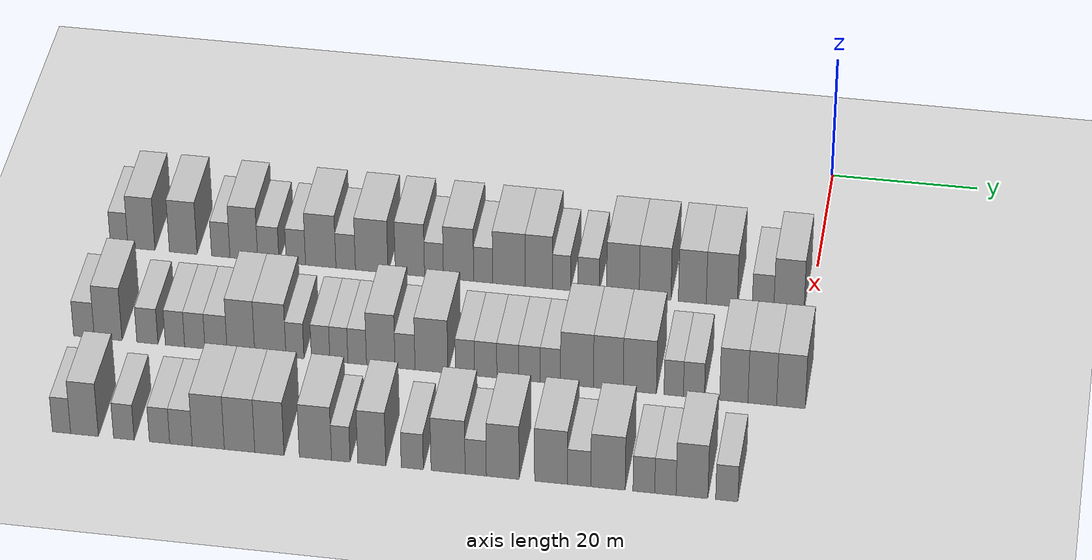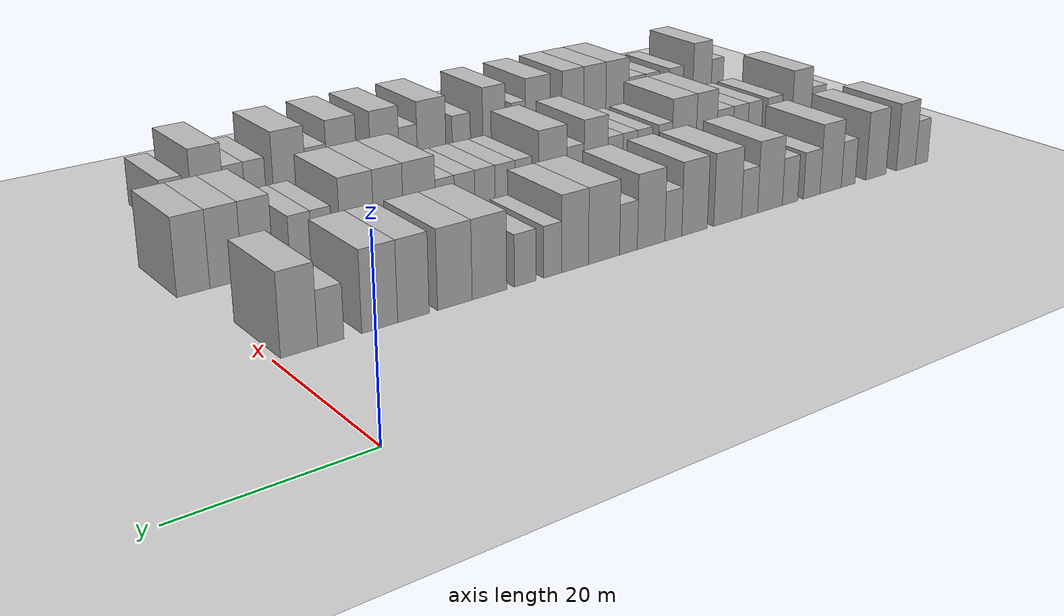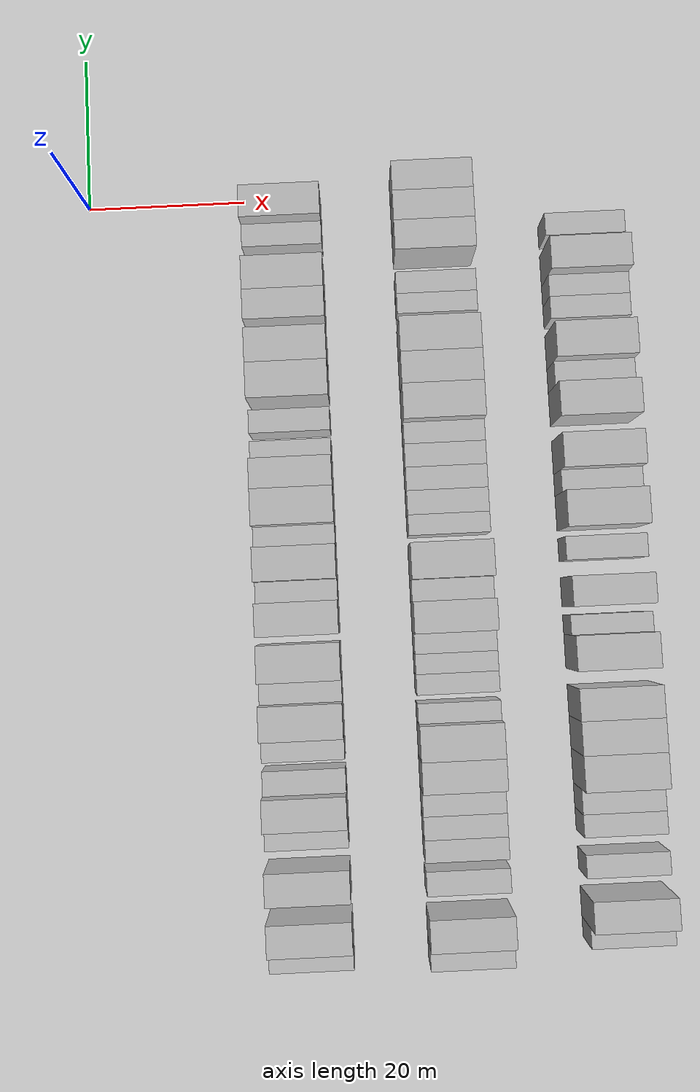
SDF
<sdf version="1.6">
 <world name="default">
  <include><name>ground_plane_1</name><uri>model://HANNAS_ground_plane</uri></include>
  <model name="building_62">
   <static>1</static>
   <pose>25.0000 -94.1520 0 0.000000 0.000000 0.000000</pose>
   <link name="link">
    <pose>0 0 3.00 0 0 0</pose>
    <collision name="collision"><geometry><box><size>10.0000 2.4363 6.0000</size></box></geometry></collision>
    <visual name="visual">
     <cast_shadows>0</cast_shadows>
     <geometry><box><size>10.0000 2.4363 6.0000</size></box></geometry>
     <material>
      <script>
       <uri>model://HANNAS_wall/materials/scripts</uri>
       <uri>model://HANNAS_wall/materials/textures</uri>
       <name>vrc/HANNAS_wall</name>
      </script>
     </material>
    </visual>
   </link>
  </model>
  <model name="building_63">
   <static>1</static>
   <pose>25.0000 -91.0666 0 0.000000 0.000000 0.000000</pose>
   <link name="link">
    <pose>0 0 4.50 0 0 0</pose>
    <collision name="collision"><geometry><box><size>10.0000 3.7346 9.0000</size></box></geometry></collision>
    <visual name="visual">
     <cast_shadows>0</cast_shadows>
     <geometry><box><size>10.0000 3.7346 9.0000</size></box></geometry>
     <material>
      <script>
       <uri>model://HANNAS_wall/materials/scripts</uri>
       <uri>model://HANNAS_wall/materials/textures</uri>
       <name>vrc/HANNAS_wall</name>
      </script>
     </material>
    </visual>
   </link>
  </model>
  <model name="building_64">
   <static>1</static>
   <pose>25.0000 -85.2861 0 0.000000 0.000000 0.000000</pose>
   <link name="link">
    <pose>0 0 4.50 0 0 0</pose>
    <collision name="collision"><geometry><box><size>10.0000 3.8263 9.0000</size></box></geometry></collision>
    <visual name="visual">
     <cast_shadows>0</cast_shadows>
     <geometry><box><size>10.0000 3.8263 9.0000</size></box></geometry>
     <material>
      <script>
       <uri>model://HANNAS_wall/materials/scripts</uri>
       <uri>model://HANNAS_wall/materials/textures</uri>
       <name>vrc/HANNAS_wall</name>
      </script>
     </material>
    </visual>
   </link>
  </model>
  <model name="building_65">
   <static>1</static>
   <pose>25.0000 -80.1051 0 0.000000 0.000000 0.000000</pose>
   <link name="link">
    <pose>0 0 3.00 0 0 0</pose>
    <collision name="collision"><geometry><box><size>10.0000 2.5358 6.0000</size></box></geometry></collision>
    <visual name="visual">
     <cast_shadows>0</cast_shadows>
     <geometry><box><size>10.0000 2.5358 6.0000</size></box></geometry>
     <material>
      <script>
       <uri>model://HANNAS_wall/materials/scripts</uri>
       <uri>model://HANNAS_wall/materials/textures</uri>
       <name>vrc/HANNAS_wall</name>
      </script>
     </material>
    </visual>
   </link>
  </model>
  <model name="building_66">
   <static>1</static>
   <pose>25.0000 -76.9200 0 0.000000 0.000000 0.000000</pose>
   <link name="link">
    <pose>0 0 4.50 0 0 0</pose>
    <collision name="collision"><geometry><box><size>10.0000 3.8344 9.0000</size></box></geometry></collision>
    <visual name="visual">
     <cast_shadows>0</cast_shadows>
     <geometry><box><size>10.0000 3.8344 9.0000</size></box></geometry>
     <material>
      <script>
       <uri>model://HANNAS_wall/materials/scripts</uri>
       <uri>model://HANNAS_wall/materials/textures</uri>
       <name>vrc/HANNAS_wall</name>
      </script>
     </material>
    </visual>
   </link>
  </model>
  <model name="building_67">
   <static>1</static>
   <pose>25.0000 -73.5407 0 0.000000 0.000000 0.000000</pose>
   <link name="link">
    <pose>0 0 3.00 0 0 0</pose>
    <collision name="collision"><geometry><box><size>10.0000 2.9241 6.0000</size></box></geometry></collision>
    <visual name="visual">
     <cast_shadows>0</cast_shadows>
     <geometry><box><size>10.0000 2.9241 6.0000</size></box></geometry>
     <material>
      <script>
       <uri>model://HANNAS_wall/materials/scripts</uri>
       <uri>model://HANNAS_wall/materials/textures</uri>
       <name>vrc/HANNAS_wall</name>
      </script>
     </material>
    </visual>
   </link>
  </model>
  <model name="building_68">
   <static>1</static>
   <pose>25.0000 -69.7511 0 0.000000 0.000000 0.000000</pose>
   <link name="link">
    <pose>0 0 3.00 0 0 0</pose>
    <collision name="collision"><geometry><box><size>10.0000 2.6551 6.0000</size></box></geometry></collision>
    <visual name="visual">
     <cast_shadows>0</cast_shadows>
     <geometry><box><size>10.0000 2.6551 6.0000</size></box></geometry>
     <material>
      <script>
       <uri>model://HANNAS_wall/materials/scripts</uri>
       <uri>model://HANNAS_wall/materials/textures</uri>
       <name>vrc/HANNAS_wall</name>
      </script>
     </material>
    </visual>
   </link>
  </model>
  <model name="building_69">
   <static>1</static>
   <pose>25.0000 -66.3393 0 0.000000 0.000000 0.000000</pose>
   <link name="link">
    <pose>0 0 4.50 0 0 0</pose>
    <collision name="collision"><geometry><box><size>10.0000 4.1685 9.0000</size></box></geometry></collision>
    <visual name="visual">
     <cast_shadows>0</cast_shadows>
     <geometry><box><size>10.0000 4.1685 9.0000</size></box></geometry>
     <material>
      <script>
       <uri>model://HANNAS_wall/materials/scripts</uri>
       <uri>model://HANNAS_wall/materials/textures</uri>
       <name>vrc/HANNAS_wall</name>
      </script>
     </material>
    </visual>
   </link>
  </model>
  <model name="building_70">
   <static>1</static>
   <pose>25.0000 -62.9199 0 0.000000 0.000000 0.000000</pose>
   <link name="link">
    <pose>0 0 3.00 0 0 0</pose>
    <collision name="collision"><geometry><box><size>10.0000 2.6703 6.0000</size></box></geometry></collision>
    <visual name="visual">
     <cast_shadows>0</cast_shadows>
     <geometry><box><size>10.0000 2.6703 6.0000</size></box></geometry>
     <material>
      <script>
       <uri>model://HANNAS_wall/materials/scripts</uri>
       <uri>model://HANNAS_wall/materials/textures</uri>
       <name>vrc/HANNAS_wall</name>
      </script>
     </material>
    </visual>
   </link>
  </model>
  <model name="building_71">
   <static>1</static>
   <pose>25.0000 -59.3494 0 0.000000 0.000000 0.000000</pose>
   <link name="link">
    <pose>0 0 4.50 0 0 0</pose>
    <collision name="collision"><geometry><box><size>10.0000 4.4707 9.0000</size></box></geometry></collision>
    <visual name="visual">
     <cast_shadows>0</cast_shadows>
     <geometry><box><size>10.0000 4.4707 9.0000</size></box></geometry>
     <material>
      <script>
       <uri>model://HANNAS_wall/materials/scripts</uri>
       <uri>model://HANNAS_wall/materials/textures</uri>
       <name>vrc/HANNAS_wall</name>
      </script>
     </material>
    </visual>
   </link>
  </model>
  <model name="building_72">
   <static>1</static>
   <pose>25.0000 -54.1172 0 0.000000 0.000000 0.000000</pose>
   <link name="link">
    <pose>0 0 4.50 0 0 0</pose>
    <collision name="collision"><geometry><box><size>10.0000 3.9937 9.0000</size></box></geometry></collision>
    <visual name="visual">
     <cast_shadows>0</cast_shadows>
     <geometry><box><size>10.0000 3.9937 9.0000</size></box></geometry>
     <material>
      <script>
       <uri>model://HANNAS_wall/materials/scripts</uri>
       <uri>model://HANNAS_wall/materials/textures</uri>
       <name>vrc/HANNAS_wall</name>
      </script>
     </material>
    </visual>
   </link>
  </model>
  <model name="building_73">
   <static>1</static>
   <pose>25.0000 -50.8327 0 0.000000 0.000000 0.000000</pose>
   <link name="link">
    <pose>0 0 3.00 0 0 0</pose>
    <collision name="collision"><geometry><box><size>10.0000 2.5753 6.0000</size></box></geometry></collision>
    <visual name="visual">
     <cast_shadows>0</cast_shadows>
     <geometry><box><size>10.0000 2.5753 6.0000</size></box></geometry>
     <material>
      <script>
       <uri>model://HANNAS_wall/materials/scripts</uri>
       <uri>model://HANNAS_wall/materials/textures</uri>
       <name>vrc/HANNAS_wall</name>
      </script>
     </material>
    </visual>
   </link>
  </model>
  <model name="building_74">
   <static>1</static>
   <pose>25.0000 -47.4837 0 0.000000 0.000000 0.000000</pose>
   <link name="link">
    <pose>0 0 4.50 0 0 0</pose>
    <collision name="collision"><geometry><box><size>10.0000 4.1226 9.0000</size></box></geometry></collision>
    <visual name="visual">
     <cast_shadows>0</cast_shadows>
     <geometry><box><size>10.0000 4.1226 9.0000</size></box></geometry>
     <material>
      <script>
       <uri>model://HANNAS_wall/materials/scripts</uri>
       <uri>model://HANNAS_wall/materials/textures</uri>
       <name>vrc/HANNAS_wall</name>
      </script>
     </material>
    </visual>
   </link>
  </model>
  <model name="building_75">
   <static>1</static>
   <pose>25.0000 -44.1335 0 0.000000 0.000000 0.000000</pose>
   <link name="link">
    <pose>0 0 3.00 0 0 0</pose>
    <collision name="collision"><geometry><box><size>10.0000 2.5778 6.0000</size></box></geometry></collision>
    <visual name="visual">
     <cast_shadows>0</cast_shadows>
     <geometry><box><size>10.0000 2.5778 6.0000</size></box></geometry>
     <material>
      <script>
       <uri>model://HANNAS_wall/materials/scripts</uri>
       <uri>model://HANNAS_wall/materials/textures</uri>
       <name>vrc/HANNAS_wall</name>
      </script>
     </material>
    </visual>
   </link>
  </model>
  <model name="building_76">
   <static>1</static>
   <pose>25.0000 -40.6232 0 0.000000 0.000000 0.000000</pose>
   <link name="link">
    <pose>0 0 4.50 0 0 0</pose>
    <collision name="collision"><geometry><box><size>10.0000 4.4428 9.0000</size></box></geometry></collision>
    <visual name="visual">
     <cast_shadows>0</cast_shadows>
     <geometry><box><size>10.0000 4.4428 9.0000</size></box></geometry>
     <material>
      <script>
       <uri>model://HANNAS_wall/materials/scripts</uri>
       <uri>model://HANNAS_wall/materials/textures</uri>
       <name>vrc/HANNAS_wall</name>
      </script>
     </material>
    </visual>
   </link>
  </model>
  <model name="building_77">
   <static>1</static>
   <pose>25.0000 -36.5516 0 0.000000 0.000000 0.000000</pose>
   <link name="link">
    <pose>0 0 4.50 0 0 0</pose>
    <collision name="collision"><geometry><box><size>10.0000 3.7005 9.0000</size></box></geometry></collision>
    <visual name="visual">
     <cast_shadows>0</cast_shadows>
     <geometry><box><size>10.0000 3.7005 9.0000</size></box></geometry>
     <material>
      <script>
       <uri>model://HANNAS_wall/materials/scripts</uri>
       <uri>model://HANNAS_wall/materials/textures</uri>
       <name>vrc/HANNAS_wall</name>
      </script>
     </material>
    </visual>
   </link>
  </model>
  <model name="building_78">
   <static>1</static>
   <pose>25.0000 -33.4884 0 0.000000 0.000000 0.000000</pose>
   <link name="link">
    <pose>0 0 3.00 0 0 0</pose>
    <collision name="collision"><geometry><box><size>10.0000 2.4259 6.0000</size></box></geometry></collision>
    <visual name="visual">
     <cast_shadows>0</cast_shadows>
     <geometry><box><size>10.0000 2.4259 6.0000</size></box></geometry>
     <material>
      <script>
       <uri>model://HANNAS_wall/materials/scripts</uri>
       <uri>model://HANNAS_wall/materials/textures</uri>
       <name>vrc/HANNAS_wall</name>
      </script>
     </material>
    </visual>
   </link>
  </model>
  <model name="building_79">
   <static>1</static>
   <pose>25.0000 -29.8310 0 0.000000 0.000000 0.000000</pose>
   <link name="link">
    <pose>0 0 3.00 0 0 0</pose>
    <collision name="collision"><geometry><box><size>10.0000 2.8890 6.0000</size></box></geometry></collision>
    <visual name="visual">
     <cast_shadows>0</cast_shadows>
     <geometry><box><size>10.0000 2.8890 6.0000</size></box></geometry>
     <material>
      <script>
       <uri>model://HANNAS_wall/materials/scripts</uri>
       <uri>model://HANNAS_wall/materials/textures</uri>
       <name>vrc/HANNAS_wall</name>
      </script>
     </material>
    </visual>
   </link>
  </model>
  <model name="building_80">
   <static>1</static>
   <pose>25.0000 -25.1808 0 0.000000 0.000000 0.000000</pose>
   <link name="link">
    <pose>0 0 4.50 0 0 0</pose>
    <collision name="collision"><geometry><box><size>10.0000 4.4114 9.0000</size></box></geometry></collision>
    <visual name="visual">
     <cast_shadows>0</cast_shadows>
     <geometry><box><size>10.0000 4.4114 9.0000</size></box></geometry>
     <material>
      <script>
       <uri>model://HANNAS_wall/materials/scripts</uri>
       <uri>model://HANNAS_wall/materials/textures</uri>
       <name>vrc/HANNAS_wall</name>
      </script>
     </material>
    </visual>
   </link>
  </model>
  <model name="building_81">
   <static>1</static>
   <pose>25.0000 -20.8322 0 0.000000 0.000000 0.000000</pose>
   <link name="link">
    <pose>0 0 4.50 0 0 0</pose>
    <collision name="collision"><geometry><box><size>10.0000 4.2859 9.0000</size></box></geometry></collision>
    <visual name="visual">
     <cast_shadows>0</cast_shadows>
     <geometry><box><size>10.0000 4.2859 9.0000</size></box></geometry>
     <material>
      <script>
       <uri>model://HANNAS_wall/materials/scripts</uri>
       <uri>model://HANNAS_wall/materials/textures</uri>
       <name>vrc/HANNAS_wall</name>
      </script>
     </material>
    </visual>
   </link>
  </model>
  <model name="building_82">
   <static>1</static>
   <pose>25.0000 -15.8119 0 0.000000 0.000000 0.000000</pose>
   <link name="link">
    <pose>0 0 4.50 0 0 0</pose>
    <collision name="collision"><geometry><box><size>10.0000 3.7547 9.0000</size></box></geometry></collision>
    <visual name="visual">
     <cast_shadows>0</cast_shadows>
     <geometry><box><size>10.0000 3.7547 9.0000</size></box></geometry>
     <material>
      <script>
       <uri>model://HANNAS_wall/materials/scripts</uri>
       <uri>model://HANNAS_wall/materials/textures</uri>
       <name>vrc/HANNAS_wall</name>
      </script>
     </material>
    </visual>
   </link>
  </model>
  <model name="building_83">
   <static>1</static>
   <pose>25.0000 -11.8497 0 0.000000 0.000000 0.000000</pose>
   <link name="link">
    <pose>0 0 4.50 0 0 0</pose>
    <collision name="collision"><geometry><box><size>10.0000 4.1697 9.0000</size></box></geometry></collision>
    <visual name="visual">
     <cast_shadows>0</cast_shadows>
     <geometry><box><size>10.0000 4.1697 9.0000</size></box></geometry>
     <material>
      <script>
       <uri>model://HANNAS_wall/materials/scripts</uri>
       <uri>model://HANNAS_wall/materials/textures</uri>
       <name>vrc/HANNAS_wall</name>
      </script>
     </material>
    </visual>
   </link>
  </model>
  <model name="building_84">
   <static>1</static>
   <pose>25.0000 -6.3131 0 0.000000 0.000000 0.000000</pose>
   <link name="link">
    <pose>0 0 3.00 0 0 0</pose>
    <collision name="collision"><geometry><box><size>10.0000 2.9035 6.0000</size></box></geometry></collision>
    <visual name="visual">
     <cast_shadows>0</cast_shadows>
     <geometry><box><size>10.0000 2.9035 6.0000</size></box></geometry>
     <material>
      <script>
       <uri>model://HANNAS_wall/materials/scripts</uri>
       <uri>model://HANNAS_wall/materials/textures</uri>
       <name>vrc/HANNAS_wall</name>
      </script>
     </material>
    </visual>
   </link>
  </model>
  <model name="building_85">
   <static>1</static>
   <pose>25.0000 -2.8423 0 0.000000 0.000000 0.000000</pose>
   <link name="link">
    <pose>0 0 4.50 0 0 0</pose>
    <collision name="collision"><geometry><box><size>10.0000 4.0379 9.0000</size></box></geometry></collision>
    <visual name="visual">
     <cast_shadows>0</cast_shadows>
     <geometry><box><size>10.0000 4.0379 9.0000</size></box></geometry>
     <material>
      <script>
       <uri>model://HANNAS_wall/materials/scripts</uri>
       <uri>model://HANNAS_wall/materials/textures</uri>
       <name>vrc/HANNAS_wall</name>
      </script>
     </material>
    </visual>
   </link>
  </model>
  <model name="building_228">
   <static>1</static>
   <pose>44.0000 -94.6263 0 0.000000 0.000000 0.000000</pose>
   <link name="link">
    <pose>0 0 3.00 0 0 0</pose>
    <collision name="collision"><geometry><box><size>10.0000 2.8032 6.0000</size></box></geometry></collision>
    <visual name="visual">
     <cast_shadows>0</cast_shadows>
     <geometry><box><size>10.0000 2.8032 6.0000</size></box></geometry>
     <material>
      <script>
       <uri>model://HANNAS_wall/materials/scripts</uri>
       <uri>model://HANNAS_wall/materials/textures</uri>
       <name>vrc/HANNAS_wall</name>
      </script>
     </material>
    </visual>
   </link>
  </model>
  <model name="building_229">
   <static>1</static>
   <pose>44.0000 -91.3469 0 0.000000 0.000000 0.000000</pose>
   <link name="link">
    <pose>0 0 4.50 0 0 0</pose>
    <collision name="collision"><geometry><box><size>10.0000 3.7555 9.0000</size></box></geometry></collision>
    <visual name="visual">
     <cast_shadows>0</cast_shadows>
     <geometry><box><size>10.0000 3.7555 9.0000</size></box></geometry>
     <material>
      <script>
       <uri>model://HANNAS_wall/materials/scripts</uri>
       <uri>model://HANNAS_wall/materials/textures</uri>
       <name>vrc/HANNAS_wall</name>
      </script>
     </material>
    </visual>
   </link>
  </model>
  <model name="building_230">
   <static>1</static>
   <pose>44.0000 -86.0438 0 0.000000 0.000000 0.000000</pose>
   <link name="link">
    <pose>0 0 3.00 0 0 0</pose>
    <collision name="collision"><geometry><box><size>10.0000 2.8507 6.0000</size></box></geometry></collision>
    <visual name="visual">
     <cast_shadows>0</cast_shadows>
     <geometry><box><size>10.0000 2.8507 6.0000</size></box></geometry>
     <material>
      <script>
       <uri>model://HANNAS_wall/materials/scripts</uri>
       <uri>model://HANNAS_wall/materials/textures</uri>
       <name>vrc/HANNAS_wall</name>
      </script>
     </material>
    </visual>
   </link>
  </model>
  <model name="building_231">
   <static>1</static>
   <pose>44.0000 -82.3161 0 0.000000 0.000000 0.000000</pose>
   <link name="link">
    <pose>0 0 3.00 0 0 0</pose>
    <collision name="collision"><geometry><box><size>10.0000 2.6048 6.0000</size></box></geometry></collision>
    <visual name="visual">
     <cast_shadows>0</cast_shadows>
     <geometry><box><size>10.0000 2.6048 6.0000</size></box></geometry>
     <material>
      <script>
       <uri>model://HANNAS_wall/materials/scripts</uri>
       <uri>model://HANNAS_wall/materials/textures</uri>
       <name>vrc/HANNAS_wall</name>
      </script>
     </material>
    </visual>
   </link>
  </model>
  <model name="building_232">
   <static>1</static>
   <pose>44.0000 -79.6428 0 0.000000 0.000000 0.000000</pose>
   <link name="link">
    <pose>0 0 3.00 0 0 0</pose>
    <collision name="collision"><geometry><box><size>10.0000 2.7419 6.0000</size></box></geometry></collision>
    <visual name="visual">
     <cast_shadows>0</cast_shadows>
     <geometry><box><size>10.0000 2.7419 6.0000</size></box></geometry>
     <material>
      <script>
       <uri>model://HANNAS_wall/materials/scripts</uri>
       <uri>model://HANNAS_wall/materials/textures</uri>
       <name>vrc/HANNAS_wall</name>
      </script>
     </material>
    </visual>
   </link>
  </model>
  <model name="building_233">
   <static>1</static>
   <pose>44.0000 -76.7818 0 0.000000 0.000000 0.000000</pose>
   <link name="link">
    <pose>0 0 3.00 0 0 0</pose>
    <collision name="collision"><geometry><box><size>10.0000 2.9800 6.0000</size></box></geometry></collision>
    <visual name="visual">
     <cast_shadows>0</cast_shadows>
     <geometry><box><size>10.0000 2.9800 6.0000</size></box></geometry>
     <material>
      <script>
       <uri>model://HANNAS_wall/materials/scripts</uri>
       <uri>model://HANNAS_wall/materials/textures</uri>
       <name>vrc/HANNAS_wall</name>
      </script>
     </material>
    </visual>
   </link>
  </model>
  <model name="building_234">
   <static>1</static>
   <pose>44.0000 -73.4351 0 0.000000 0.000000 0.000000</pose>
   <link name="link">
    <pose>0 0 4.50 0 0 0</pose>
    <collision name="collision"><geometry><box><size>10.0000 3.7135 9.0000</size></box></geometry></collision>
    <visual name="visual">
     <cast_shadows>0</cast_shadows>
     <geometry><box><size>10.0000 3.7135 9.0000</size></box></geometry>
     <material>
      <script>
       <uri>model://HANNAS_wall/materials/scripts</uri>
       <uri>model://HANNAS_wall/materials/textures</uri>
       <name>vrc/HANNAS_wall</name>
      </script>
     </material>
    </visual>
   </link>
  </model>
  <model name="building_235">
   <static>1</static>
   <pose>44.0000 -69.4809 0 0.000000 0.000000 0.000000</pose>
   <link name="link">
    <pose>0 0 4.50 0 0 0</pose>
    <collision name="collision"><geometry><box><size>10.0000 4.1949 9.0000</size></box></geometry></collision>
    <visual name="visual">
     <cast_shadows>0</cast_shadows>
     <geometry><box><size>10.0000 4.1949 9.0000</size></box></geometry>
     <material>
      <script>
       <uri>model://HANNAS_wall/materials/scripts</uri>
       <uri>model://HANNAS_wall/materials/textures</uri>
       <name>vrc/HANNAS_wall</name>
      </script>
     </material>
    </visual>
   </link>
  </model>
  <model name="building_236">
   <static>1</static>
   <pose>44.0000 -66.1765 0 0.000000 0.000000 0.000000</pose>
   <link name="link">
    <pose>0 0 3.00 0 0 0</pose>
    <collision name="collision"><geometry><box><size>10.0000 2.4138 6.0000</size></box></geometry></collision>
    <visual name="visual">
     <cast_shadows>0</cast_shadows>
     <geometry><box><size>10.0000 2.4138 6.0000</size></box></geometry>
     <material>
      <script>
       <uri>model://HANNAS_wall/materials/scripts</uri>
       <uri>model://HANNAS_wall/materials/textures</uri>
       <name>vrc/HANNAS_wall</name>
      </script>
     </material>
    </visual>
   </link>
  </model>
  <model name="building_237">
   <static>1</static>
   <pose>44.0000 -62.7341 0 0.000000 0.000000 0.000000</pose>
   <link name="link">
    <pose>0 0 3.00 0 0 0</pose>
    <collision name="collision"><geometry><box><size>10.0000 2.4710 6.0000</size></box></geometry></collision>
    <visual name="visual">
     <cast_shadows>0</cast_shadows>
     <geometry><box><size>10.0000 2.4710 6.0000</size></box></geometry>
     <material>
      <script>
       <uri>model://HANNAS_wall/materials/scripts</uri>
       <uri>model://HANNAS_wall/materials/textures</uri>
       <name>vrc/HANNAS_wall</name>
      </script>
     </material>
    </visual>
   </link>
  </model>
  <model name="building_238">
   <static>1</static>
   <pose>44.0000 -60.2896 0 0.000000 0.000000 0.000000</pose>
   <link name="link">
    <pose>0 0 3.00 0 0 0</pose>
    <collision name="collision"><geometry><box><size>10.0000 2.4181 6.0000</size></box></geometry></collision>
    <visual name="visual">
     <cast_shadows>0</cast_shadows>
     <geometry><box><size>10.0000 2.4181 6.0000</size></box></geometry>
     <material>
      <script>
       <uri>model://HANNAS_wall/materials/scripts</uri>
       <uri>model://HANNAS_wall/materials/textures</uri>
       <name>vrc/HANNAS_wall</name>
      </script>
     </material>
    </visual>
   </link>
  </model>
  <model name="building_239">
   <static>1</static>
   <pose>44.0000 -57.8400 0 0.000000 0.000000 0.000000</pose>
   <link name="link">
    <pose>0 0 3.00 0 0 0</pose>
    <collision name="collision"><geometry><box><size>10.0000 2.4811 6.0000</size></box></geometry></collision>
    <visual name="visual">
     <cast_shadows>0</cast_shadows>
     <geometry><box><size>10.0000 2.4811 6.0000</size></box></geometry>
     <material>
      <script>
       <uri>model://HANNAS_wall/materials/scripts</uri>
       <uri>model://HANNAS_wall/materials/textures</uri>
       <name>vrc/HANNAS_wall</name>
      </script>
     </material>
    </visual>
   </link>
  </model>
  <model name="building_240">
   <static>1</static>
   <pose>44.0000 -54.6894 0 0.000000 0.000000 0.000000</pose>
   <link name="link">
    <pose>0 0 4.50 0 0 0</pose>
    <collision name="collision"><geometry><box><size>10.0000 3.8200 9.0000</size></box></geometry></collision>
    <visual name="visual">
     <cast_shadows>0</cast_shadows>
     <geometry><box><size>10.0000 3.8200 9.0000</size></box></geometry>
     <material>
      <script>
       <uri>model://HANNAS_wall/materials/scripts</uri>
       <uri>model://HANNAS_wall/materials/textures</uri>
       <name>vrc/HANNAS_wall</name>
      </script>
     </material>
    </visual>
   </link>
  </model>
  <model name="building_241">
   <static>1</static>
   <pose>44.0000 -51.4509 0 0.000000 0.000000 0.000000</pose>
   <link name="link">
    <pose>0 0 3.00 0 0 0</pose>
    <collision name="collision"><geometry><box><size>10.0000 2.6572 6.0000</size></box></geometry></collision>
    <visual name="visual">
     <cast_shadows>0</cast_shadows>
     <geometry><box><size>10.0000 2.6572 6.0000</size></box></geometry>
     <material>
      <script>
       <uri>model://HANNAS_wall/materials/scripts</uri>
       <uri>model://HANNAS_wall/materials/textures</uri>
       <name>vrc/HANNAS_wall</name>
      </script>
     </material>
    </visual>
   </link>
  </model>
  <model name="building_242">
   <static>1</static>
   <pose>44.0000 -47.9327 0 0.000000 0.000000 0.000000</pose>
   <link name="link">
    <pose>0 0 4.50 0 0 0</pose>
    <collision name="collision"><geometry><box><size>10.0000 4.3792 9.0000</size></box></geometry></collision>
    <visual name="visual">
     <cast_shadows>0</cast_shadows>
     <geometry><box><size>10.0000 4.3792 9.0000</size></box></geometry>
     <material>
      <script>
       <uri>model://HANNAS_wall/materials/scripts</uri>
       <uri>model://HANNAS_wall/materials/textures</uri>
       <name>vrc/HANNAS_wall</name>
      </script>
     </material>
    </visual>
   </link>
  </model>
  <model name="building_243">
   <static>1</static>
   <pose>44.0000 -43.4792 0 0.000000 0.000000 0.000000</pose>
   <link name="link">
    <pose>0 0 3.00 0 0 0</pose>
    <collision name="collision"><geometry><box><size>10.0000 2.5277 6.0000</size></box></geometry></collision>
    <visual name="visual">
     <cast_shadows>0</cast_shadows>
     <geometry><box><size>10.0000 2.5277 6.0000</size></box></geometry>
     <material>
      <script>
       <uri>model://HANNAS_wall/materials/scripts</uri>
       <uri>model://HANNAS_wall/materials/textures</uri>
       <name>vrc/HANNAS_wall</name>
      </script>
     </material>
    </visual>
   </link>
  </model>
  <model name="building_244">
   <static>1</static>
   <pose>44.0000 -40.7286 0 0.000000 0.000000 0.000000</pose>
   <link name="link">
    <pose>0 0 3.00 0 0 0</pose>
    <collision name="collision"><geometry><box><size>10.0000 2.9734 6.0000</size></box></geometry></collision>
    <visual name="visual">
     <cast_shadows>0</cast_shadows>
     <geometry><box><size>10.0000 2.9734 6.0000</size></box></geometry>
     <material>
      <script>
       <uri>model://HANNAS_wall/materials/scripts</uri>
       <uri>model://HANNAS_wall/materials/textures</uri>
       <name>vrc/HANNAS_wall</name>
      </script>
     </material>
    </visual>
   </link>
  </model>
  <model name="building_245">
   <static>1</static>
   <pose>44.0000 -37.8044 0 0.000000 0.000000 0.000000</pose>
   <link name="link">
    <pose>0 0 3.00 0 0 0</pose>
    <collision name="collision"><geometry><box><size>10.0000 2.8751 6.0000</size></box></geometry></collision>
    <visual name="visual">
     <cast_shadows>0</cast_shadows>
     <geometry><box><size>10.0000 2.8751 6.0000</size></box></geometry>
     <material>
      <script>
       <uri>model://HANNAS_wall/materials/scripts</uri>
       <uri>model://HANNAS_wall/materials/textures</uri>
       <name>vrc/HANNAS_wall</name>
      </script>
     </material>
    </visual>
   </link>
  </model>
  <model name="building_246">
   <static>1</static>
   <pose>44.0000 -34.9215 0 0.000000 0.000000 0.000000</pose>
   <link name="link">
    <pose>0 0 3.00 0 0 0</pose>
    <collision name="collision"><geometry><box><size>10.0000 2.8907 6.0000</size></box></geometry></collision>
    <visual name="visual">
     <cast_shadows>0</cast_shadows>
     <geometry><box><size>10.0000 2.8907 6.0000</size></box></geometry>
     <material>
      <script>
       <uri>model://HANNAS_wall/materials/scripts</uri>
       <uri>model://HANNAS_wall/materials/textures</uri>
       <name>vrc/HANNAS_wall</name>
      </script>
     </material>
    </visual>
   </link>
  </model>
  <model name="building_247">
   <static>1</static>
   <pose>44.0000 -32.1425 0 0.000000 0.000000 0.000000</pose>
   <link name="link">
    <pose>0 0 3.00 0 0 0</pose>
    <collision name="collision"><geometry><box><size>10.0000 2.6673 6.0000</size></box></geometry></collision>
    <visual name="visual">
     <cast_shadows>0</cast_shadows>
     <geometry><box><size>10.0000 2.6673 6.0000</size></box></geometry>
     <material>
      <script>
       <uri>model://HANNAS_wall/materials/scripts</uri>
       <uri>model://HANNAS_wall/materials/textures</uri>
       <name>vrc/HANNAS_wall</name>
      </script>
     </material>
    </visual>
   </link>
  </model>
  <model name="building_248">
   <static>1</static>
   <pose>44.0000 -28.6306 0 0.000000 0.000000 0.000000</pose>
   <link name="link">
    <pose>0 0 4.50 0 0 0</pose>
    <collision name="collision"><geometry><box><size>10.0000 4.3564 9.0000</size></box></geometry></collision>
    <visual name="visual">
     <cast_shadows>0</cast_shadows>
     <geometry><box><size>10.0000 4.3564 9.0000</size></box></geometry>
     <material>
      <script>
       <uri>model://HANNAS_wall/materials/scripts</uri>
       <uri>model://HANNAS_wall/materials/textures</uri>
       <name>vrc/HANNAS_wall</name>
      </script>
     </material>
    </visual>
   </link>
  </model>
  <model name="building_249">
   <static>1</static>
   <pose>44.0000 -24.4943 0 0.000000 0.000000 0.000000</pose>
   <link name="link">
    <pose>0 0 4.50 0 0 0</pose>
    <collision name="collision"><geometry><box><size>10.0000 3.9162 9.0000</size></box></geometry></collision>
    <visual name="visual">
     <cast_shadows>0</cast_shadows>
     <geometry><box><size>10.0000 3.9162 9.0000</size></box></geometry>
     <material>
      <script>
       <uri>model://HANNAS_wall/materials/scripts</uri>
       <uri>model://HANNAS_wall/materials/textures</uri>
       <name>vrc/HANNAS_wall</name>
      </script>
     </material>
    </visual>
   </link>
  </model>
  <model name="building_250">
   <static>1</static>
   <pose>44.0000 -20.3490 0 0.000000 0.000000 0.000000</pose>
   <link name="link">
    <pose>0 0 4.50 0 0 0</pose>
    <collision name="collision"><geometry><box><size>10.0000 4.3742 9.0000</size></box></geometry></collision>
    <visual name="visual">
     <cast_shadows>0</cast_shadows>
     <geometry><box><size>10.0000 4.3742 9.0000</size></box></geometry>
     <material>
      <script>
       <uri>model://HANNAS_wall/materials/scripts</uri>
       <uri>model://HANNAS_wall/materials/textures</uri>
       <name>vrc/HANNAS_wall</name>
      </script>
     </material>
    </visual>
   </link>
  </model>
  <model name="building_251">
   <static>1</static>
   <pose>44.0000 -15.8861 0 0.000000 0.000000 0.000000</pose>
   <link name="link">
    <pose>0 0 3.00 0 0 0</pose>
    <collision name="collision"><geometry><box><size>10.0000 2.5515 6.0000</size></box></geometry></collision>
    <visual name="visual">
     <cast_shadows>0</cast_shadows>
     <geometry><box><size>10.0000 2.5515 6.0000</size></box></geometry>
     <material>
      <script>
       <uri>model://HANNAS_wall/materials/scripts</uri>
       <uri>model://HANNAS_wall/materials/textures</uri>
       <name>vrc/HANNAS_wall</name>
      </script>
     </material>
    </visual>
   </link>
  </model>
  <model name="building_252">
   <static>1</static>
   <pose>44.0000 -13.2332 0 0.000000 0.000000 0.000000</pose>
   <link name="link">
    <pose>0 0 3.00 0 0 0</pose>
    <collision name="collision"><geometry><box><size>10.0000 2.7543 6.0000</size></box></geometry></collision>
    <visual name="visual">
     <cast_shadows>0</cast_shadows>
     <geometry><box><size>10.0000 2.7543 6.0000</size></box></geometry>
     <material>
      <script>
       <uri>model://HANNAS_wall/materials/scripts</uri>
       <uri>model://HANNAS_wall/materials/textures</uri>
       <name>vrc/HANNAS_wall</name>
      </script>
     </material>
    </visual>
   </link>
  </model>
  <model name="building_253">
   <static>1</static>
   <pose>44.0000 -7.9990 0 0.000000 0.000000 0.000000</pose>
   <link name="link">
    <pose>0 0 4.50 0 0 0</pose>
    <collision name="collision"><geometry><box><size>10.0000 3.7141 9.0000</size></box></geometry></collision>
    <visual name="visual">
     <cast_shadows>0</cast_shadows>
     <geometry><box><size>10.0000 3.7141 9.0000</size></box></geometry>
     <material>
      <script>
       <uri>model://HANNAS_wall/materials/scripts</uri>
       <uri>model://HANNAS_wall/materials/textures</uri>
       <name>vrc/HANNAS_wall</name>
      </script>
     </material>
    </visual>
   </link>
  </model>
  <model name="building_254">
   <static>1</static>
   <pose>44.0000 -4.2663 0 0.000000 0.000000 0.000000</pose>
   <link name="link">
    <pose>0 0 4.50 0 0 0</pose>
    <collision name="collision"><geometry><box><size>10.0000 3.7513 9.0000</size></box></geometry></collision>
    <visual name="visual">
     <cast_shadows>0</cast_shadows>
     <geometry><box><size>10.0000 3.7513 9.0000</size></box></geometry>
     <material>
      <script>
       <uri>model://HANNAS_wall/materials/scripts</uri>
       <uri>model://HANNAS_wall/materials/textures</uri>
       <name>vrc/HANNAS_wall</name>
      </script>
     </material>
    </visual>
   </link>
  </model>
  <model name="building_255">
   <static>1</static>
   <pose>44.0000 -0.5148 0 0.000000 0.000000 0.000000</pose>
   <link name="link">
    <pose>0 0 4.50 0 0 0</pose>
    <collision name="collision"><geometry><box><size>10.0000 3.7516 9.0000</size></box></geometry></collision>
    <visual name="visual">
     <cast_shadows>0</cast_shadows>
     <geometry><box><size>10.0000 3.7516 9.0000</size></box></geometry>
     <material>
      <script>
       <uri>model://HANNAS_wall/materials/scripts</uri>
       <uri>model://HANNAS_wall/materials/textures</uri>
       <name>vrc/HANNAS_wall</name>
      </script>
     </material>
    </visual>
   </link>
  </model>
  <model name="building_402">
   <static>1</static>
   <pose>63.0000 -93.1680 0 0.000000 0.000000 0.000000</pose>
   <link name="link">
    <pose>0 0 3.00 0 0 0</pose>
    <collision name="collision"><geometry><box><size>10.0000 2.4097 6.0000</size></box></geometry></collision>
    <visual name="visual">
     <cast_shadows>0</cast_shadows>
     <geometry><box><size>10.0000 2.4097 6.0000</size></box></geometry>
     <material>
      <script>
       <uri>model://HANNAS_wall/materials/scripts</uri>
       <uri>model://HANNAS_wall/materials/textures</uri>
       <name>vrc/HANNAS_wall</name>
      </script>
     </material>
    </visual>
   </link>
  </model>
  <model name="building_403">
   <static>1</static>
   <pose>63.0000 -90.1338 0 0.000000 0.000000 0.000000</pose>
   <link name="link">
    <pose>0 0 4.50 0 0 0</pose>
    <collision name="collision"><geometry><box><size>10.0000 3.6586 9.0000</size></box></geometry></collision>
    <visual name="visual">
     <cast_shadows>0</cast_shadows>
     <geometry><box><size>10.0000 3.6586 9.0000</size></box></geometry>
     <material>
      <script>
       <uri>model://HANNAS_wall/materials/scripts</uri>
       <uri>model://HANNAS_wall/materials/textures</uri>
       <name>vrc/HANNAS_wall</name>
      </script>
     </material>
    </visual>
   </link>
  </model>
  <model name="building_404">
   <static>1</static>
   <pose>63.0000 -84.9426 0 0.000000 0.000000 0.000000</pose>
   <link name="link">
    <pose>0 0 3.00 0 0 0</pose>
    <collision name="collision"><geometry><box><size>10.0000 2.7238 6.0000</size></box></geometry></collision>
    <visual name="visual">
     <cast_shadows>0</cast_shadows>
     <geometry><box><size>10.0000 2.7238 6.0000</size></box></geometry>
     <material>
      <script>
       <uri>model://HANNAS_wall/materials/scripts</uri>
       <uri>model://HANNAS_wall/materials/textures</uri>
       <name>vrc/HANNAS_wall</name>
      </script>
     </material>
    </visual>
   </link>
  </model>
  <model name="building_405">
   <static>1</static>
   <pose>63.0000 -80.2427 0 0.000000 0.000000 0.000000</pose>
   <link name="link">
    <pose>0 0 3.00 0 0 0</pose>
    <collision name="collision"><geometry><box><size>10.0000 2.6760 6.0000</size></box></geometry></collision>
    <visual name="visual">
     <cast_shadows>0</cast_shadows>
     <geometry><box><size>10.0000 2.6760 6.0000</size></box></geometry>
     <material>
      <script>
       <uri>model://HANNAS_wall/materials/scripts</uri>
       <uri>model://HANNAS_wall/materials/textures</uri>
       <name>vrc/HANNAS_wall</name>
      </script>
     </material>
    </visual>
   </link>
  </model>
  <model name="building_406">
   <static>1</static>
   <pose>63.0000 -77.4198 0 0.000000 0.000000 0.000000</pose>
   <link name="link">
    <pose>0 0 3.00 0 0 0</pose>
    <collision name="collision"><geometry><box><size>10.0000 2.9697 6.0000</size></box></geometry></collision>
    <visual name="visual">
     <cast_shadows>0</cast_shadows>
     <geometry><box><size>10.0000 2.9697 6.0000</size></box></geometry>
     <material>
      <script>
       <uri>model://HANNAS_wall/materials/scripts</uri>
       <uri>model://HANNAS_wall/materials/textures</uri>
       <name>vrc/HANNAS_wall</name>
      </script>
     </material>
    </visual>
   </link>
  </model>
  <model name="building_407">
   <static>1</static>
   <pose>63.0000 -73.8275 0 0.000000 0.000000 0.000000</pose>
   <link name="link">
    <pose>0 0 4.50 0 0 0</pose>
    <collision name="collision"><geometry><box><size>10.0000 4.2148 9.0000</size></box></geometry></collision>
    <visual name="visual">
     <cast_shadows>0</cast_shadows>
     <geometry><box><size>10.0000 4.2148 9.0000</size></box></geometry>
     <material>
      <script>
       <uri>model://HANNAS_wall/materials/scripts</uri>
       <uri>model://HANNAS_wall/materials/textures</uri>
       <name>vrc/HANNAS_wall</name>
      </script>
     </material>
    </visual>
   </link>
  </model>
  <model name="building_408">
   <static>1</static>
   <pose>63.0000 -69.7227 0 0.000000 0.000000 0.000000</pose>
   <link name="link">
    <pose>0 0 4.50 0 0 0</pose>
    <collision name="collision"><geometry><box><size>10.0000 3.9948 9.0000</size></box></geometry></collision>
    <visual name="visual">
     <cast_shadows>0</cast_shadows>
     <geometry><box><size>10.0000 3.9948 9.0000</size></box></geometry>
     <material>
      <script>
       <uri>model://HANNAS_wall/materials/scripts</uri>
       <uri>model://HANNAS_wall/materials/textures</uri>
       <name>vrc/HANNAS_wall</name>
      </script>
     </material>
    </visual>
   </link>
  </model>
  <model name="building_409">
   <static>1</static>
   <pose>63.0000 -65.8139 0 0.000000 0.000000 0.000000</pose>
   <link name="link">
    <pose>0 0 4.50 0 0 0</pose>
    <collision name="collision"><geometry><box><size>10.0000 3.8230 9.0000</size></box></geometry></collision>
    <visual name="visual">
     <cast_shadows>0</cast_shadows>
     <geometry><box><size>10.0000 3.8230 9.0000</size></box></geometry>
     <material>
      <script>
       <uri>model://HANNAS_wall/materials/scripts</uri>
       <uri>model://HANNAS_wall/materials/textures</uri>
       <name>vrc/HANNAS_wall</name>
      </script>
     </material>
    </visual>
   </link>
  </model>
  <model name="building_410">
   <static>1</static>
   <pose>63.0000 -59.7972 0 0.000000 0.000000 0.000000</pose>
   <link name="link">
    <pose>0 0 4.50 0 0 0</pose>
    <collision name="collision"><geometry><box><size>10.0000 4.2103 9.0000</size></box></geometry></collision>
    <visual name="visual">
     <cast_shadows>0</cast_shadows>
     <geometry><box><size>10.0000 4.2103 9.0000</size></box></geometry>
     <material>
      <script>
       <uri>model://HANNAS_wall/materials/scripts</uri>
       <uri>model://HANNAS_wall/materials/textures</uri>
       <name>vrc/HANNAS_wall</name>
      </script>
     </material>
    </visual>
   </link>
  </model>
  <model name="building_411">
   <static>1</static>
   <pose>63.0000 -56.4817 0 0.000000 0.000000 0.000000</pose>
   <link name="link">
    <pose>0 0 3.00 0 0 0</pose>
    <collision name="collision"><geometry><box><size>10.0000 2.4208 6.0000</size></box></geometry></collision>
    <visual name="visual">
     <cast_shadows>0</cast_shadows>
     <geometry><box><size>10.0000 2.4208 6.0000</size></box></geometry>
     <material>
      <script>
       <uri>model://HANNAS_wall/materials/scripts</uri>
       <uri>model://HANNAS_wall/materials/textures</uri>
       <name>vrc/HANNAS_wall</name>
      </script>
     </material>
    </visual>
   </link>
  </model>
  <model name="building_412">
   <static>1</static>
   <pose>63.0000 -52.4476 0 0.000000 0.000000 0.000000</pose>
   <link name="link">
    <pose>0 0 4.50 0 0 0</pose>
    <collision name="collision"><geometry><box><size>10.0000 3.6476 9.0000</size></box></geometry></collision>
    <visual name="visual">
     <cast_shadows>0</cast_shadows>
     <geometry><box><size>10.0000 3.6476 9.0000</size></box></geometry>
     <material>
      <script>
       <uri>model://HANNAS_wall/materials/scripts</uri>
       <uri>model://HANNAS_wall/materials/textures</uri>
       <name>vrc/HANNAS_wall</name>
      </script>
     </material>
    </visual>
   </link>
  </model>
  <model name="building_413">
   <static>1</static>
   <pose>63.0000 -47.1853 0 0.000000 0.000000 0.000000</pose>
   <link name="link">
    <pose>0 0 3.00 0 0 0</pose>
    <collision name="collision"><geometry><box><size>10.0000 2.8769 6.0000</size></box></geometry></collision>
    <visual name="visual">
     <cast_shadows>0</cast_shadows>
     <geometry><box><size>10.0000 2.8769 6.0000</size></box></geometry>
     <material>
      <script>
       <uri>model://HANNAS_wall/materials/scripts</uri>
       <uri>model://HANNAS_wall/materials/textures</uri>
       <name>vrc/HANNAS_wall</name>
      </script>
     </material>
    </visual>
   </link>
  </model>
  <model name="building_414">
   <static>1</static>
   <pose>63.0000 -42.5380 0 0.000000 0.000000 0.000000</pose>
   <link name="link">
    <pose>0 0 4.50 0 0 0</pose>
    <collision name="collision"><geometry><box><size>10.0000 4.4177 9.0000</size></box></geometry></collision>
    <visual name="visual">
     <cast_shadows>0</cast_shadows>
     <geometry><box><size>10.0000 4.4177 9.0000</size></box></geometry>
     <material>
      <script>
       <uri>model://HANNAS_wall/materials/scripts</uri>
       <uri>model://HANNAS_wall/materials/textures</uri>
       <name>vrc/HANNAS_wall</name>
      </script>
     </material>
    </visual>
   </link>
  </model>
  <model name="building_415">
   <static>1</static>
   <pose>63.0000 -38.9549 0 0.000000 0.000000 0.000000</pose>
   <link name="link">
    <pose>0 0 3.00 0 0 0</pose>
    <collision name="collision"><geometry><box><size>10.0000 2.7484 6.0000</size></box></geometry></collision>
    <visual name="visual">
     <cast_shadows>0</cast_shadows>
     <geometry><box><size>10.0000 2.7484 6.0000</size></box></geometry>
     <material>
      <script>
       <uri>model://HANNAS_wall/materials/scripts</uri>
       <uri>model://HANNAS_wall/materials/textures</uri>
       <name>vrc/HANNAS_wall</name>
      </script>
     </material>
    </visual>
   </link>
  </model>
  <model name="building_416">
   <static>1</static>
   <pose>63.0000 -35.4627 0 0.000000 0.000000 0.000000</pose>
   <link name="link">
    <pose>0 0 4.50 0 0 0</pose>
    <collision name="collision"><geometry><box><size>10.0000 4.2361 9.0000</size></box></geometry></collision>
    <visual name="visual">
     <cast_shadows>0</cast_shadows>
     <geometry><box><size>10.0000 4.2361 9.0000</size></box></geometry>
     <material>
      <script>
       <uri>model://HANNAS_wall/materials/scripts</uri>
       <uri>model://HANNAS_wall/materials/textures</uri>
       <name>vrc/HANNAS_wall</name>
      </script>
     </material>
    </visual>
   </link>
  </model>
  <model name="building_417">
   <static>1</static>
   <pose>63.0000 -29.2158 0 0.000000 0.000000 0.000000</pose>
   <link name="link">
    <pose>0 0 4.50 0 0 0</pose>
    <collision name="collision"><geometry><box><size>10.0000 4.2576 9.0000</size></box></geometry></collision>
    <visual name="visual">
     <cast_shadows>0</cast_shadows>
     <geometry><box><size>10.0000 4.2576 9.0000</size></box></geometry>
     <material>
      <script>
       <uri>model://HANNAS_wall/materials/scripts</uri>
       <uri>model://HANNAS_wall/materials/textures</uri>
       <name>vrc/HANNAS_wall</name>
      </script>
     </material>
    </visual>
   </link>
  </model>
  <model name="building_418">
   <static>1</static>
   <pose>63.0000 -25.5880 0 0.000000 0.000000 0.000000</pose>
   <link name="link">
    <pose>0 0 3.00 0 0 0</pose>
    <collision name="collision"><geometry><box><size>10.0000 2.9980 6.0000</size></box></geometry></collision>
    <visual name="visual">
     <cast_shadows>0</cast_shadows>
     <geometry><box><size>10.0000 2.9980 6.0000</size></box></geometry>
     <material>
      <script>
       <uri>model://HANNAS_wall/materials/scripts</uri>
       <uri>model://HANNAS_wall/materials/textures</uri>
       <name>vrc/HANNAS_wall</name>
      </script>
     </material>
    </visual>
   </link>
  </model>
  <model name="building_419">
   <static>1</static>
   <pose>63.0000 -21.8840 0 0.000000 0.000000 0.000000</pose>
   <link name="link">
    <pose>0 0 4.50 0 0 0</pose>
    <collision name="collision"><geometry><box><size>10.0000 4.4101 9.0000</size></box></geometry></collision>
    <visual name="visual">
     <cast_shadows>0</cast_shadows>
     <geometry><box><size>10.0000 4.4101 9.0000</size></box></geometry>
     <material>
      <script>
       <uri>model://HANNAS_wall/materials/scripts</uri>
       <uri>model://HANNAS_wall/materials/textures</uri>
       <name>vrc/HANNAS_wall</name>
      </script>
     </material>
    </visual>
   </link>
  </model>
  <model name="building_420">
   <static>1</static>
   <pose>63.0000 -17.2790 0 0.000000 0.000000 0.000000</pose>
   <link name="link">
    <pose>0 0 3.00 0 0 0</pose>
    <collision name="collision"><geometry><box><size>10.0000 2.7999 6.0000</size></box></geometry></collision>
    <visual name="visual">
     <cast_shadows>0</cast_shadows>
     <geometry><box><size>10.0000 2.7999 6.0000</size></box></geometry>
     <material>
      <script>
       <uri>model://HANNAS_wall/materials/scripts</uri>
       <uri>model://HANNAS_wall/materials/textures</uri>
       <name>vrc/HANNAS_wall</name>
      </script>
     </material>
    </visual>
   </link>
  </model>
  <model name="building_421">
   <static>1</static>
   <pose>63.0000 -14.5141 0 0.000000 0.000000 0.000000</pose>
   <link name="link">
    <pose>0 0 3.00 0 0 0</pose>
    <collision name="collision"><geometry><box><size>10.0000 2.7298 6.0000</size></box></geometry></collision>
    <visual name="visual">
     <cast_shadows>0</cast_shadows>
     <geometry><box><size>10.0000 2.7298 6.0000</size></box></geometry>
     <material>
      <script>
       <uri>model://HANNAS_wall/materials/scripts</uri>
       <uri>model://HANNAS_wall/materials/textures</uri>
       <name>vrc/HANNAS_wall</name>
      </script>
     </material>
    </visual>
   </link>
  </model>
  <model name="building_422">
   <static>1</static>
   <pose>63.0000 -11.1131 0 0.000000 0.000000 0.000000</pose>
   <link name="link">
    <pose>0 0 4.50 0 0 0</pose>
    <collision name="collision"><geometry><box><size>10.0000 4.0723 9.0000</size></box></geometry></collision>
    <visual name="visual">
     <cast_shadows>0</cast_shadows>
     <geometry><box><size>10.0000 4.0723 9.0000</size></box></geometry>
     <material>
      <script>
       <uri>model://HANNAS_wall/materials/scripts</uri>
       <uri>model://HANNAS_wall/materials/textures</uri>
       <name>vrc/HANNAS_wall</name>
      </script>
     </material>
    </visual>
   </link>
  </model>
  <model name="building_423">
   <static>1</static>
   <pose>63.0000 -6.6524 0 0.000000 0.000000 0.000000</pose>
   <link name="link">
    <pose>0 0 3.00 0 0 0</pose>
    <collision name="collision"><geometry><box><size>10.0000 2.8490 6.0000</size></box></geometry></collision>
    <visual name="visual">
     <cast_shadows>0</cast_shadows>
     <geometry><box><size>10.0000 2.8490 6.0000</size></box></geometry>
     <material>
      <script>
       <uri>model://HANNAS_wall/materials/scripts</uri>
       <uri>model://HANNAS_wall/materials/textures</uri>
       <name>vrc/HANNAS_wall</name>
      </script>
     </material>
    </visual>
   </link>
  </model>
 </world>
</sdf>
